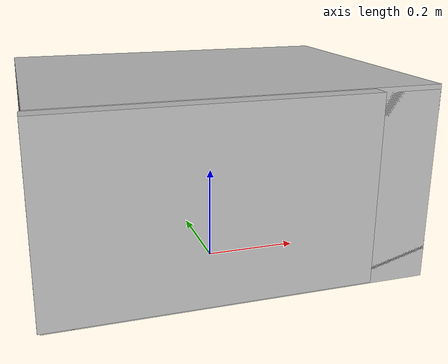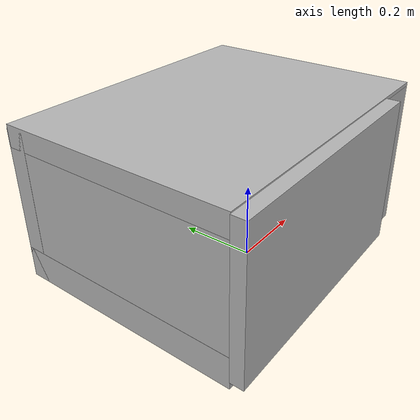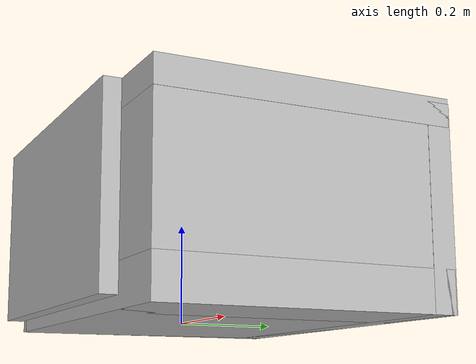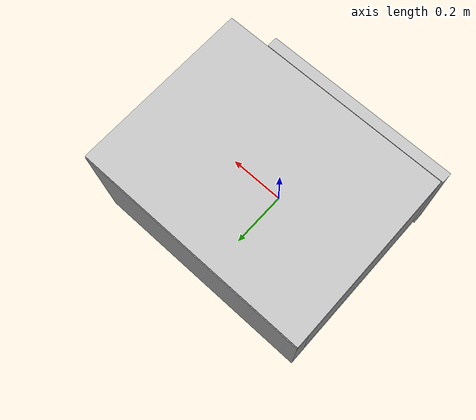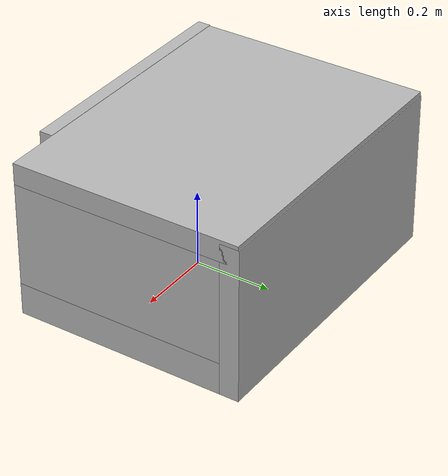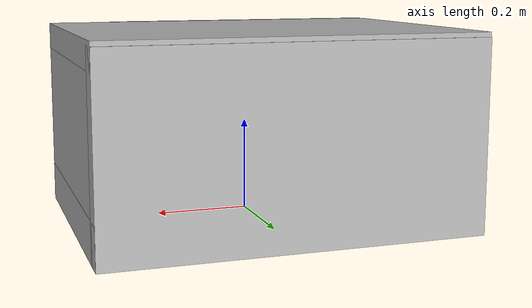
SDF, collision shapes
<?xml version="1.0"?>
<sdf version="1.4">
  <model name="microwave">
    <static>false</static>
    <link name="body">

      <inertial>
        <mass>15</mass>
        <inertia>
          <ixx>0.58</ixx>
          <ixy>0</ixy>
          <ixz>0</ixz>
          <iyy>0.58</iyy>
          <iyz>0</iyz>
          <izz>0.19</izz>
        </inertia>
      </inertial>

      <visual name="visual">
<pose>0 -0.59 0.02 0 0 0</pose>
        <geometry>
          <mesh>
            <uri>model://microwave/meshes/microwave_body.dae</uri>
<scale>0.0012 0.0012 0.0012</scale>
          </mesh>
        </geometry>

      </visual>
      <collision name="body_box_1">
<pose>0.0048 0.075 0.042 0 0 0</pose>
        <geometry>
<box><size>0.784 0.60 0.084</size></box>
        </geometry>

      </collision>

      <collision name="body_box_2">
<pose>-0.357 0.075 0.20 0 0 0</pose>
        <geometry>
<box><size>0.06 0.60 0.40</size></box>
        </geometry>

      </collision>

      <collision name="body_box_3">
<pose>0.294 0.075 0.20 0 0 0</pose>
        <geometry>
<box><size>0.205 0.60 0.40</size></box>
        </geometry>

      </collision>
      <collision name="body_box_4">
<pose>0.0048 0.352 0.20 0 0 0</pose>
        <geometry>
<box><size>0.784 0.05 0.40</size></box>
        </geometry>

      </collision>

      <collision name="body_box_5">
<pose>0.0048 0.075 0.382 0 0 0</pose>
        <geometry>
<box><size>0.784 0.60 0.056</size></box>
        </geometry>

      </collision>
    </link>
<link name="door">

      <inertial>
        <mass>0.4</mass>
        <inertia>
          <ixx>1</ixx>
          <ixy>0</ixy>
          <ixz>0</ixz>
          <iyy>1</iyy>
          <iyz>0</iyz>
          <izz>1</izz>
        </inertia>
      </inertial>

<pose>-0.06 -0.24 0.025 0 0 0</pose>
	 <visual name="visual">
<pose>0 -0.64 0.02 0 0 0</pose>
        <geometry>
          <mesh>
            <uri>model://microwave/meshes/microwave_door.dae</uri>
<scale>0.0012 0.0012 0.0012</scale>
          </mesh>
        </geometry>

      </visual>
<collision name = "ad">
<pose>-0.01 -0.0045 0.192 0 0 0</pose>
 <geometry>
<box><size>0.645 0.035 0.384</size></box>
        </geometry>
      </collision>
</link>

      <joint type="revolute" name="door_joint">
        <pose>-0.322 0 0 0 0 0</pose>
        <child>door</child>
        <parent>body</parent>
        <axis>
    		<limit>
      			<upper>0.0</upper>
      			<lower>-2</lower>
    		</limit>
          <xyz>0 0 1</xyz>
          <dynamics>
            <damping>10</damping>
          </dynamics>
        </axis>
      </joint>

  </model>
</sdf>
